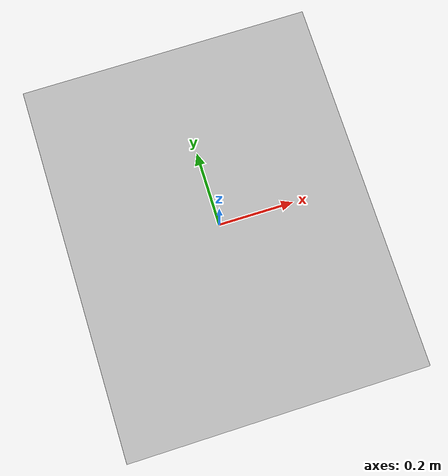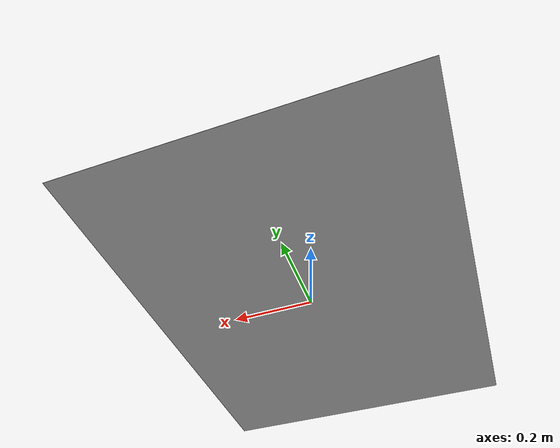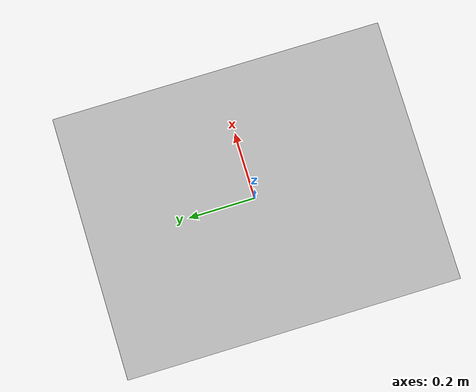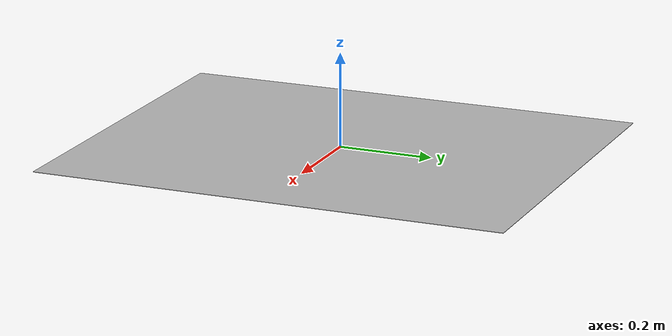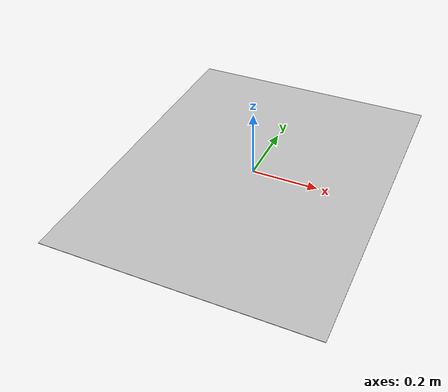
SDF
<?xml version='1.0'?>
<sdf version='1.6'>
  <model name='graffiti_logo'>
    <link name='main'>
    <pose frame=''>0 0 0 0 0 0</pose>
      <visual name='main_Visual'>
        <geometry>
          <box>
            <size>0.79 1.00 0.001</size>
            <!-- inner logo dim: -->
          </box>
        </geometry>
           <material>
          <script>
            <uri>model://graffiti_logo/materials/scripts</uri>
            <uri>model://graffiti_logo/materials/textures</uri>
            <name>graffiti_logo</name>
          </script>
        </material>
      </visual>
     </link>
    <static>1</static>
  </model>
</sdf>
